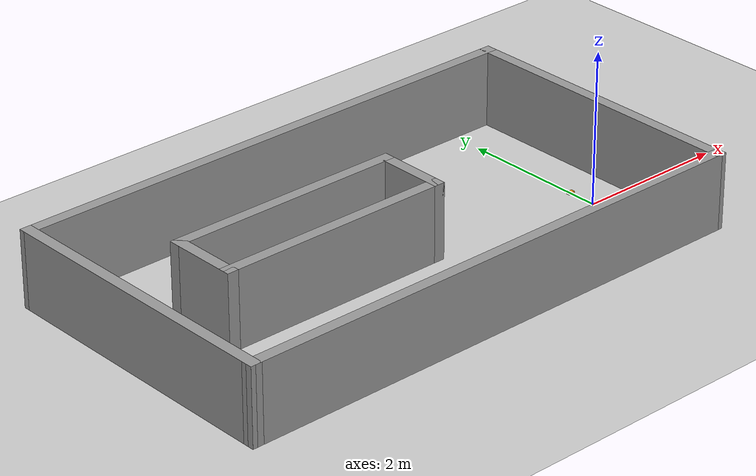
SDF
<sdf version="1.7">
 <world name="default">
  <light name="sun" type="directional">
   <pose>0 0 10 0 -0 0</pose>
   <diffuse>0.8 0.8 0.8 1</diffuse>
   <specular>0.2 0.2 0.2 1</specular>
   <attenuation>
    <range>1000</range>
    <constant>0.9</constant>
    <linear>0.01</linear>
    <quadratic>0.001</quadratic>
   </attenuation>
   <direction>-0.5 0.1 -0.9</direction>
   <spot><inner_angle>0</inner_angle><outer_angle>0</outer_angle><falloff>0</falloff></spot>
  </light>
  <model name="ground_plane">
   <static>1</static>
   <link name="link">
    <collision name="collision">
     <geometry><plane><normal>0 0 1</normal><size>100 100</size></plane></geometry>
     <surface><friction><ode><mu>100</mu><mu2>50</mu2></ode></friction></surface>
    </collision>
    <visual name="visual">
     <cast_shadows>0</cast_shadows>
     <geometry><plane><normal>0 0 1</normal><size>100 100</size></plane></geometry>
     <material>
      <script><uri>file://media/materials/scripts/gazebo.material</uri><name>Gazebo/Grey</name></script>
     </material>
    </visual>
   </link>
  </model>
  <gravity>0 0 -9.8</gravity>
  <magnetic_field>6e-06 2.3e-05 -4.2e-05</magnetic_field>
  <atmosphere type="adiabatic"/>
  <physics type="ode">
   <max_step_size>0.001</max_step_size>
   <real_time_factor>1</real_time_factor>
   <real_time_update_rate>1000</real_time_update_rate>
  </physics>
  <scene><ambient>0.4 0.4 0.4 1</ambient><background>0.7 0.7 0.7 1</background><shadows>1</shadows></scene>
  <audio><device>default</device></audio>
  <spherical_coordinates>
   <surface_model>EARTH_WGS84</surface_model>
   <latitude_deg>0</latitude_deg>
   <longitude_deg>0</longitude_deg>
   <elevation>0</elevation>
   <heading_deg>0</heading_deg>
  </spherical_coordinates>
  <model name="room">
   <pose>-2.91098 0.547766 0 0 -0 0</pose>
   <link name="Wall_10">
    <collision name="Wall_10_Collision">
     <geometry><box><size>4 0.15 1</size></box></geometry>
     <pose>0 0 0.5 0 -0 0</pose>
    </collision>
    <visual name="Wall_10_Visual">
     <pose>0 0 0.5 0 -0 0</pose>
     <geometry><box><size>4 0.15 1</size></box></geometry>
     <material>
      <script><uri>file://media/materials/scripts/gazebo.material</uri><name>Gazebo/Grey</name></script>
      <ambient>1 1 1 1</ambient>
     </material>
     <meta><layer>0</layer></meta>
    </visual>
    <pose>3.525 0.004783 0 0 -0 -1.5708</pose>
   </link>
   <link name="Wall_12">
    <collision name="Wall_12_Collision">
     <geometry><box><size>7.2 0.15 1</size></box></geometry>
     <pose>0 0 0.5 0 -0 0</pose>
    </collision>
    <visual name="Wall_12_Visual">
     <pose>0 0 0.5 0 -0 0</pose>
     <geometry><box><size>7.2 0.15 1</size></box></geometry>
     <material>
      <script><uri>file://media/materials/scripts/gazebo.material</uri><name>Gazebo/Grey</name></script>
      <ambient>1 1 1 1</ambient>
     </material>
     <meta><layer>0</layer></meta>
    </visual>
    <pose>-2e-06 -1.925 0 0 -0 -3.14024</pose>
   </link>
   <link name="Wall_14">
    <collision name="Wall_14_Collision">
     <geometry><box><size>4 0.15 1</size></box></geometry>
     <pose>0 0 0.5 0 -0 0</pose>
    </collision>
    <visual name="Wall_14_Visual">
     <pose>0 0 0.5 0 -0 0</pose>
     <geometry><box><size>4 0.15 1</size></box></geometry>
     <material>
      <script><uri>file://media/materials/scripts/gazebo.material</uri><name>Gazebo/Grey</name></script>
      <ambient>1 1 1 1</ambient>
     </material>
     <meta><layer>0</layer></meta>
    </visual>
    <pose>-3.525 -0.004783 0 0 -0 -1.5708</pose>
   </link>
   <link name="Wall_16">
    <collision name="Wall_16_Collision">
     <geometry><box><size>3.2 0.15 1</size></box></geometry>
     <pose>0 0 0.5 0 -0 0</pose>
    </collision>
    <visual name="Wall_16_Visual">
     <pose>0 0 0.5 0 -0 0</pose>
     <geometry><box><size>3.2 0.15 1</size></box></geometry>
     <material>
      <script><uri>file://media/materials/scripts/gazebo.material</uri><name>Gazebo/Grey</name></script>
      <ambient>1 1 1 1</ambient>
     </material>
     <meta><layer>0</layer></meta>
    </visual>
    <pose>-0.9398 0.583447 0 0 -0 0</pose>
   </link>
   <link name="Wall_18">
    <collision name="Wall_18_Collision">
     <geometry><box><size>1 0.15 1</size></box></geometry>
     <pose>0 0 0.5 0 -0 0</pose>
    </collision>
    <visual name="Wall_18_Visual">
     <pose>0 0 0.5 0 -0 0</pose>
     <geometry><box><size>1 0.15 1</size></box></geometry>
     <material>
      <script><uri>file://media/materials/scripts/gazebo.material</uri><name>Gazebo/Grey</name></script>
      <ambient>1 1 1 1</ambient>
     </material>
     <meta><layer>0</layer></meta>
    </visual>
    <pose>-2.4648 0.158446 0 0 -0 -1.5708</pose>
   </link>
   <link name="Wall_19">
    <collision name="Wall_19_Collision">
     <geometry><box><size>3.2 0.15 1</size></box></geometry>
     <pose>0 0 0.5 0 -0 0</pose>
    </collision>
    <visual name="Wall_19_Visual">
     <pose>0 0 0.5 0 -0 0</pose>
     <geometry><box><size>3.2 0.15 1</size></box></geometry>
     <material>
      <script><uri>file://media/materials/scripts/gazebo.material</uri><name>Gazebo/Grey</name></script>
      <ambient>1 1 1 1</ambient>
     </material>
     <meta><layer>0</layer></meta>
    </visual>
    <pose>-0.9398 -0.266553 0 0 -0 0</pose>
   </link>
   <link name="Wall_21">
    <collision name="Wall_21_Collision">
     <geometry><box><size>1 0.15 1</size></box></geometry>
     <pose>0 0 0.5 0 -0 0</pose>
    </collision>
    <visual name="Wall_21_Visual">
     <pose>0 0 0.5 0 -0 0</pose>
     <geometry><box><size>1 0.15 1</size></box></geometry>
     <material>
      <script><uri>file://media/materials/scripts/gazebo.material</uri><name>Gazebo/Grey</name></script>
      <ambient>1 1 1 1</ambient>
     </material>
     <meta><layer>0</layer></meta>
    </visual>
    <pose>0.5852 0.158446 0 0 -0 -1.5708</pose>
   </link>
   <link name="Wall_5">
    <collision name="Wall_5_Collision">
     <geometry><box><size>7.2 0.15 1</size></box></geometry>
     <pose>0 0 0.5 0 -0 0</pose>
    </collision>
    <visual name="Wall_5_Visual">
     <pose>0 0 0.5 0 -0 0</pose>
     <geometry><box><size>7.2 0.15 1</size></box></geometry>
     <material>
      <script><uri>file://media/materials/scripts/gazebo.material</uri><name>Gazebo/Grey</name></script>
      <ambient>1 1 1 1</ambient>
     </material>
     <meta><layer>0</layer></meta>
    </visual>
    <pose>1e-06 1.925 0 0 -0 0.001357</pose>
   </link>
   <static>1</static>
  </model>
  <model name="grasp_box">
   <pose>0 0.38 0.0125 0 0 0</pose>
   <link name="box_link">
    <inertial>
     <mass>0.15</mass>
     <inertia><ixx>4.56e-5</ixx><ixy>0</ixy><ixz>0</ixz><iyy>1.09e-4</iyy><iyz>0</iyz><izz>1.39e-4</izz></inertia>
    </inertial>
    <collision name="collision">
     <geometry><box><size>0.09 0.055 0.025</size></box></geometry>
     <surface><friction><ode><mu>1.0</mu><mu2>1.0</mu2></ode></friction></surface>
    </collision>
    <visual name="visual">
     <geometry><box><size>0.09 0.055 0.025</size></box></geometry>
     <material><ambient>0.90 0.55 0.10 1</ambient><diffuse>0.90 0.55 0.10 1</diffuse></material>
    </visual>
   </link>
  </model>
  <plugin name="gazebo_ros_state" filename="libgazebo_ros_state.so">
   <ros><namespace>/gazebo</namespace></ros>
   <update_rate>30.0</update_rate>
  </plugin>
 </world>
</sdf>
